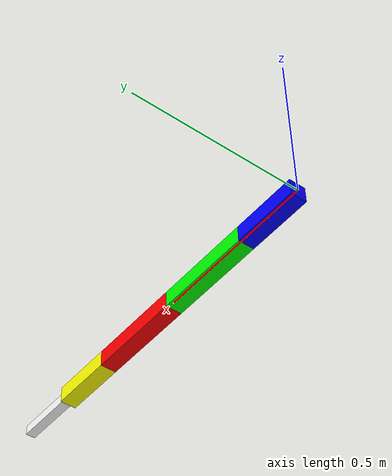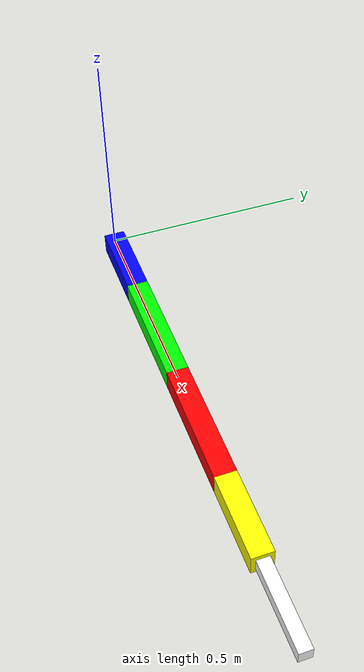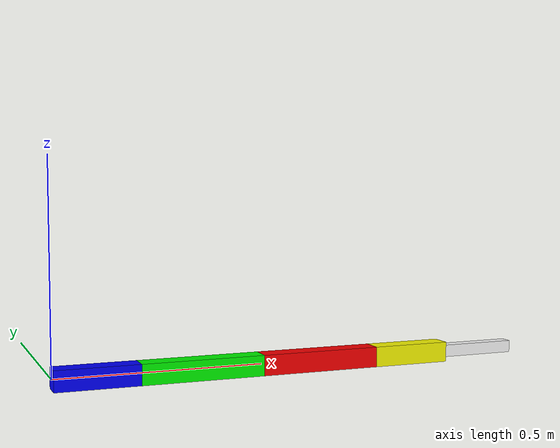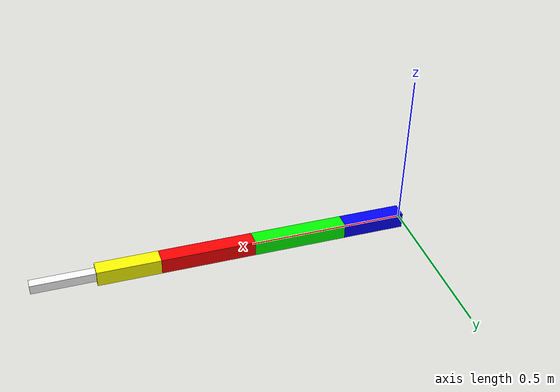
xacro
<?xml version="1.0"?>
<robot name="four_link_planar"
       xmlns:xacro="http://www.ros.org/wiki/xacro">

  <xacro:property name="L1" value="0.2"/>
  <xacro:property name="L2" value="0.3"/>
  <xacro:property name="L3" value="0.3"/>
  <xacro:property name="L4" value="0.2"/>

  <!-- ================= BASE LINK ================= -->
  <link name="base_link"/>

  <!-- ================= LINK 1 ================= -->
  <link name="link1">
    <visual>
      <origin xyz="${L1/2} 0 0"/>
      <geometry>
        <box size="${L1} 0.05 0.05"/>
      </geometry>
      <material name="blue">
        <color rgba="0 0 1 1"/>
      </material>
    </visual>
  </link>

  <joint name="joint1" type="revolute">
    <parent link="base_link"/>
    <child link="link1"/>
    <origin xyz="0 0 0"/>
    <axis xyz="0 0 1"/>
    <limit lower="-3.14" upper="3.14" effort="10" velocity="2"/>
  </joint>

  <!-- ================= LINK 2 ================= -->
  <link name="link2">
    <visual>
      <origin xyz="${L2/2} 0 0"/>
      <geometry>
        <box size="${L2} 0.05 0.05"/>
      </geometry>
      <material name="green">
        <color rgba="0 1 0 1"/>
      </material>
    </visual>
  </link>

  <joint name="joint2" type="revolute">
    <parent link="link1"/>
    <child link="link2"/>
    <origin xyz="${L1} 0 0"/>
    <axis xyz="0 0 1"/>
    <limit lower="-3.14" upper="3.14" effort="10" velocity="2"/>
  </joint>

  <!-- ================= LINK 3 ================= -->
  <link name="link3">
    <visual>
      <origin xyz="${L3/2} 0 0"/>
      <geometry>
        <box size="${L3} 0.05 0.05"/>
      </geometry>
      <material name="red">
        <color rgba="1 0 0 1"/>
      </material>
    </visual>
  </link>

  <joint name="joint3" type="revolute">
    <parent link="link2"/>
    <child link="link3"/>
    <origin xyz="${L2} 0 0"/>
    <axis xyz="0 0 1"/>
    <limit lower="-3.14" upper="3.14" effort="10" velocity="2"/>
  </joint>

  <!-- ================= LINK 4 ================= -->
  <link name="link4">
    <visual>
      <origin xyz="${L4/2} 0 0"/>
      <geometry>
        <box size="${L4} 0.05 0.05"/>
      </geometry>
      <material name="yellow">
        <color rgba="1 1 0 1"/>
      </material>
    </visual>
  </link>

  <joint name="joint4" type="revolute">
    <parent link="link3"/>
    <child link="link4"/>
    <origin xyz="${L3} 0 0"/>
    <axis xyz="0 0 1"/>
    <limit lower="-3.14" upper="3.14" effort="10" velocity="2"/>
  </joint>

  <!-- ================= TOOL LINK ================= -->
  <link name="tool">
    <visual>
      <origin xyz="${L4/2} 0 0"/>
      <geometry>
        <box size="${L4} 0.03 0.03"/>
      </geometry>
      <material name="white">
        <color rgba="1 1 1 1"/>
      </material>
    </visual>
  </link>

  <joint name="tool_joint" type="fixed">
    <parent link="link4"/>
    <child link="tool"/>
    <origin xyz="${L4} 0 0"/>
  </joint>

</robot>
